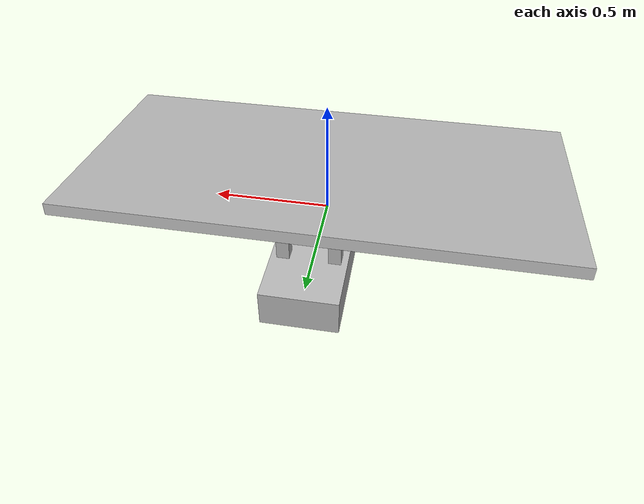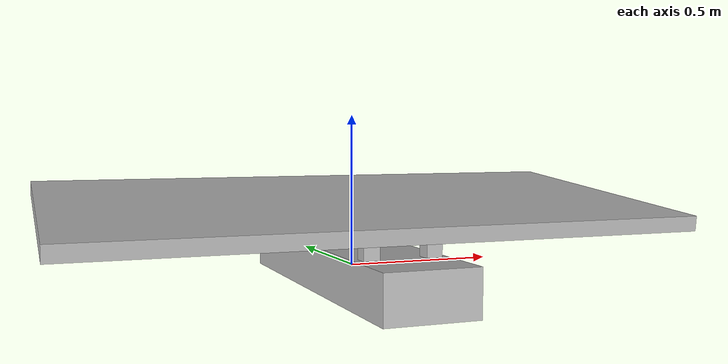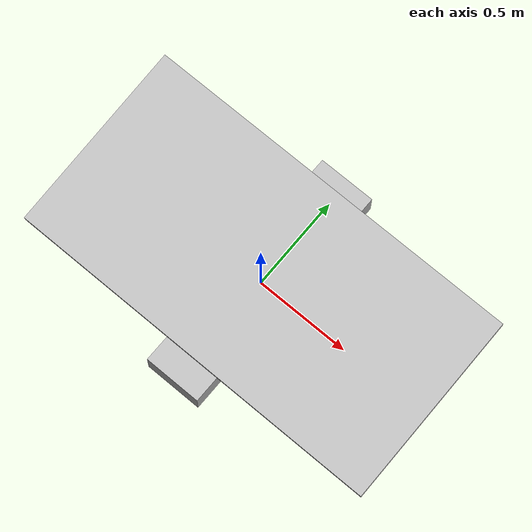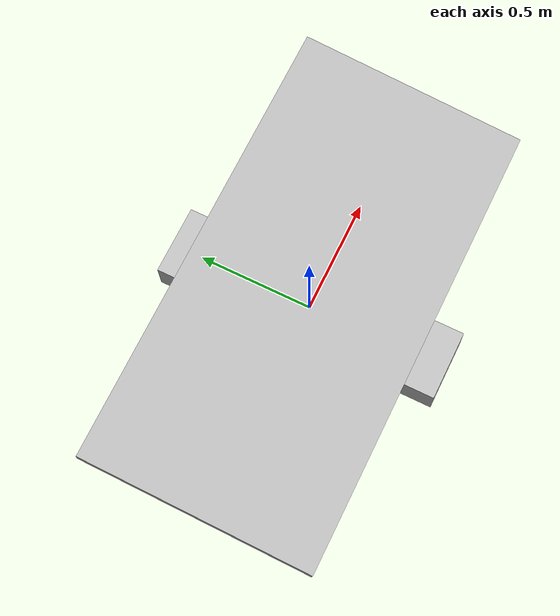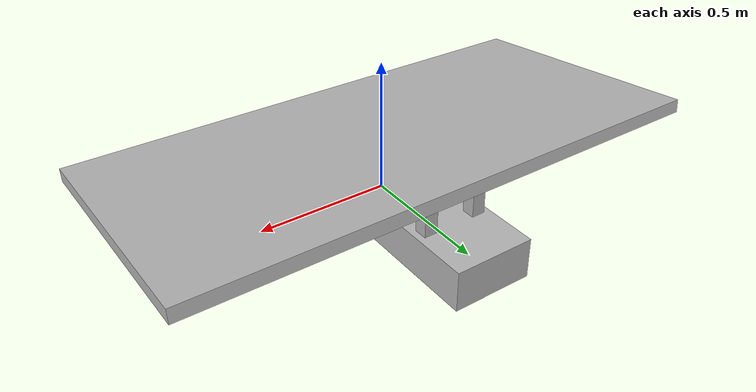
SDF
<?xml version='1.0'?>
<sdf version='1.5'>
  <model name='floating_buoy2'>
    <pose>0 0 0 0 0 0</pose>

    <link name='base_link'>
      <inertial>
        <pose>0 0 0 0 0 0</pose>
        <mass>10</mass>
        <inertia>
          <ixx>1.32</ixx>
          <ixy>0</ixy>
          <ixz>0</ixz>
          <iyy>0.09375</iyy>
          <iyz>0</iyz>
          <izz>1.377</izz>
        </inertia>
      </inertial>

      <visual name='base_link_visual'>
        <pose>0 0 0 0 0 0</pose>
        <geometry>
          <box>
            <size>0.3 1.25 0.15</size>
          </box>
        </geometry>
      </visual>

      <collision name='base_link_collision'>
        <pose>0 0 0 0 0 0</pose>
        <geometry>
          <box>
            <size>0.3 1.25 0.15</size>
          </box>
        </geometry>
      </collision>
    </link>

        <!-- Small box 1 (rear left pole) -->
    <link name='small_box_1'>
      <pose>-0.1 -0.4 0.075 0 0 0</pose>
      <inertial>
        <pose>0.1 0.4 0 0 0 0</pose>
        <mass>0.001</mass>
        <inertia>
          <ixx>0.0000035</ixx>
          <ixy>0</ixy>
          <ixz>0</ixz>
          <iyy>0.0000035</iyy>
          <iyz>0</iyz>
          <izz>0.00000041</izz>
        </inertia>
      </inertial>
      <visual name='small_box_1_visual'>
        <geometry>
          <box>
            <size>0.05 0.05 0.15</size>
          </box>
        </geometry>
      </visual>
      <collision name='small_box_1_collision'>
        <geometry>
          <box>
            <size>0.05 0.05 0.15</size>
          </box>
        </geometry>
      </collision>
    </link>
    <joint name="small_box_1_joint" type="fixed">
      <parent>base_link</parent>
      <child>small_box_1</child>
    </joint>

    <!-- Small box 2 (front left pole, taller) -->
    <link name='small_box_2'>
      <pose>-0.1 0.4 0.15 0 0 0</pose> <!-- Adjusted Z position for height -->
      <inertial>
        <pose>0.1 -0.4 0 0 0 0</pose>
        <mass>0.001</mass>
        <inertia>
          <ixx>0.0000035</ixx>
          <ixy>0</ixy>
          <ixz>0</ixz>
          <iyy>0.0000035</iyy>
          <iyz>0</iyz>
          <izz>0.00000041</izz>
        </inertia>
      </inertial>
      <visual name='small_box_2_visual'>
        <geometry>
          <box>
            <size>0.05 0.05 0.20</size>
          </box>
        </geometry>
      </visual>
      <collision name='small_box_2_collision'>
        <geometry>
          <box>
            <size>0.05 0.05 0.20</size>
          </box>
        </geometry>
      </collision>
    </link>
    <joint name="small_box_2_joint" type="fixed">
      <parent>base_link</parent>
      <child>small_box_2</child>
    </joint>

    <!-- Small box 3 (rear right pole) -->
    <link name='small_box_3'>
      <pose>0.1 -0.4 0.075 0 0 0</pose>
      <inertial>
        <pose>-0.1 0.4 0 0 0 0</pose>
        <mass>0.001</mass>
        <inertia>
          <ixx>0.0000035</ixx>
          <ixy>0</ixy>
          <ixz>0</ixz>
          <iyy>0.0000035</iyy>
          <iyz>0</iyz>
          <izz>0.00000041</izz>
        </inertia>
      </inertial>
      <visual name='small_box_3_visual'>
        <geometry>
          <box>
            <size>0.05 0.05 0.15</size>
          </box>
        </geometry>
      </visual>
      <collision name='small_box_3_collision'>
        <geometry>
          <box>
            <size>0.05 0.05 0.15</size>
          </box>
        </geometry>
      </collision>
    </link>
    <joint name="small_box_3_joint" type="fixed">
      <parent>base_link</parent>
      <child>small_box_3</child>
    </joint>

    <!-- Small box 4 (front right pole, taller) -->
    <link name='small_box_4'>
      <pose>0.1 0.4 0.15 0 0 0</pose> <!-- Adjusted Z position for height -->
      <inertial>
        <pose>-0.1 -0.4 0 0 0 0</pose>
        <mass>0.001</mass>
        <inertia>
          <ixx>0.0000035</ixx>
          <ixy>0</ixy>
          <ixz>0</ixz>
          <iyy>0.0000035</iyy>
          <iyz>0</iyz>
          <izz>0.00000041</izz>
        </inertia>
      </inertial>
      <visual name='small_box_4_visual'>
        <geometry>
          <box>
            <size>0.05 0.05 0.20</size>
          </box>
        </geometry>
      </visual>
      <collision name='small_box_4_collision'>
        <geometry>
          <box>
            <size>0.05 0.05 0.20</size>
          </box>
        </geometry>
      </collision>
    </link>

    <joint name="small_box_4_joint" type="fixed">
      <parent>base_link</parent>
      <child>small_box_4</child>
    </joint>

<!-- Square -->

    <link name='top_square'>
      <pose>0 0 0.2 0.1 0 0</pose>
      <inertial>
        <pose>0 0 0 0 0 0</pose>
        <mass>0.001</mass>
        <inertia>
          <ixx>0.0000835</ixx>
          <ixy>0</ixy>
          <ixz>0</ixz>
          <iyy>0.000333</iyy>
          <iyz>0</iyz>
          <izz>0.000416</izz>
        </inertia>
      </inertial>
      <visual name='top_square_visual'>
        <geometry>
          <box>
            <size>2 1 0.05</size>
          </box>
        </geometry>
      </visual>
      <collision name='top_square_collision'>
        <geometry>
          <box>
            <size>2 1 0.05</size>
          </box>
        </geometry>
      </collision>
    </link>

    <!-- Fixed joints to attach the square platform to each pole -->
    <joint name="top_square_to_small_box_1" type="fixed">
      <parent>small_box_1</parent>
      <child>top_square</child>
    </joint>

    <joint name="top_square_to_small_box_2" type="fixed">
      <parent>small_box_2</parent>
      <child>top_square</child>
    </joint>

    <joint name="top_square_to_small_box_3" type="fixed">
      <parent>small_box_3</parent>
      <child>top_square</child>
    </joint>

    <joint name="top_square_to_small_box_4" type="fixed">
      <parent>small_box_4</parent>
      <child>top_square</child>
    </joint>

    <!-- buoyancy plugin -->
    <plugin name="freebuoyancy_gazebo" filename="libfreebuoyancy_gazebo.so">
      <descriptionParam>robot_description</descriptionParam>
      <fluidTopic>current</fluidTopic>
      <alwaysOn>true</alwaysOn>
      <surface>0 0 0</surface>
      <updateRate>.001</updateRate>

      <link name='base_link'>
        <buoyancy>
          <compensation>0.15</compensation>
          <origin xyz="0 0 0"/>
        </buoyancy>
      </link>

    </plugin>

  </model>
</sdf>
